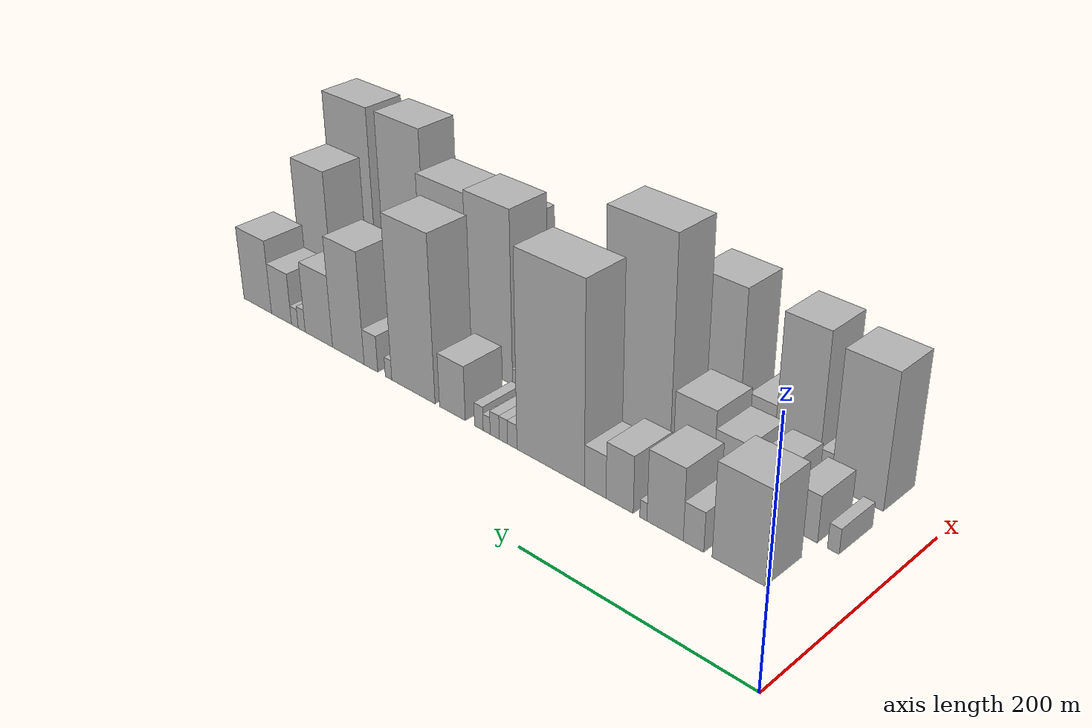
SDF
<sdf version="1.6">
 <world name="default">
  <model name="building_16">
   <static>1</static>
   <pose>100.0000 76.8772 0 0.000000 0.000000 0.000000</pose>
   <link name="link">
    <pose>0 0 39.00 0 0 0</pose>
    <collision name="collision"><geometry><box><size>40.0000 43.7319 78.0000</size></box></geometry></collision>
    <visual name="visual">
     <cast_shadows>0</cast_shadows>
     <geometry><box><size>40.0000 43.7319 78.0000</size></box></geometry>
     <material>
      <script>
       <uri>model://HANNAS_wall/materials/scripts</uri>
       <uri>model://HANNAS_wall/materials/textures</uri>
       <name>vrc/HANNAS_wall</name>
      </script>
     </material>
    </visual>
   </link>
  </model>
  <model name="building_17">
   <static>1</static>
   <pose>100.0000 114.5624 0 0.000000 0.000000 0.000000</pose>
   <link name="link">
    <pose>0 0 16.50 0 0 0</pose>
    <collision name="collision"><geometry><box><size>40.0000 17.6386 33.0000</size></box></geometry></collision>
    <visual name="visual">
     <cast_shadows>0</cast_shadows>
     <geometry><box><size>40.0000 17.6386 33.0000</size></box></geometry>
     <material>
      <script>
       <uri>model://HANNAS_wall/materials/scripts</uri>
       <uri>model://HANNAS_wall/materials/textures</uri>
       <name>vrc/HANNAS_wall</name>
      </script>
     </material>
    </visual>
   </link>
  </model>
  <model name="building_18">
   <static>1</static>
   <pose>100.0000 139.4143 0 0.000000 0.000000 0.000000</pose>
   <link name="link">
    <pose>0 0 30.00 0 0 0</pose>
    <collision name="collision"><geometry><box><size>40.0000 32.0651 60.0000</size></box></geometry></collision>
    <visual name="visual">
     <cast_shadows>0</cast_shadows>
     <geometry><box><size>40.0000 32.0651 60.0000</size></box></geometry>
     <material>
      <script>
       <uri>model://HANNAS_wall/materials/scripts</uri>
       <uri>model://HANNAS_wall/materials/textures</uri>
       <name>vrc/HANNAS_wall</name>
      </script>
     </material>
    </visual>
   </link>
  </model>
  <model name="building_19">
   <static>1</static>
   <pose>100.0000 158.6503 0 0.000000 0.000000 0.000000</pose>
   <link name="link">
    <pose>0 0 7.50 0 0 0</pose>
    <collision name="collision"><geometry><box><size>40.0000 6.4071 15.0000</size></box></geometry></collision>
    <visual name="visual">
     <cast_shadows>0</cast_shadows>
     <geometry><box><size>40.0000 6.4071 15.0000</size></box></geometry>
     <material>
      <script>
       <uri>model://HANNAS_wall/materials/scripts</uri>
       <uri>model://HANNAS_wall/materials/textures</uri>
       <name>vrc/HANNAS_wall</name>
      </script>
     </material>
    </visual>
   </link>
  </model>
  <model name="building_20">
   <static>1</static>
   <pose>100.0000 180.4715 0 0.000000 0.000000 0.000000</pose>
   <link name="link">
    <pose>0 0 24.00 0 0 0</pose>
    <collision name="collision"><geometry><box><size>40.0000 25.2353 48.0000</size></box></geometry></collision>
    <visual name="visual">
     <cast_shadows>0</cast_shadows>
     <geometry><box><size>40.0000 25.2353 48.0000</size></box></geometry>
     <material>
      <script>
       <uri>model://HANNAS_wall/materials/scripts</uri>
       <uri>model://HANNAS_wall/materials/textures</uri>
       <name>vrc/HANNAS_wall</name>
      </script>
     </material>
    </visual>
   </link>
  </model>
  <model name="building_21">
   <static>1</static>
   <pose>100.0000 203.3106 0 0.000000 0.000000 0.000000</pose>
   <link name="link">
    <pose>0 0 18.00 0 0 0</pose>
    <collision name="collision"><geometry><box><size>40.0000 20.4430 36.0000</size></box></geometry></collision>
    <visual name="visual">
     <cast_shadows>0</cast_shadows>
     <geometry><box><size>40.0000 20.4430 36.0000</size></box></geometry>
     <material>
      <script>
       <uri>model://HANNAS_wall/materials/scripts</uri>
       <uri>model://HANNAS_wall/materials/textures</uri>
       <name>vrc/HANNAS_wall</name>
      </script>
     </material>
    </visual>
   </link>
  </model>
  <model name="building_22">
   <static>1</static>
   <pose>100.0000 247.0963 0 0.000000 0.000000 0.000000</pose>
   <link name="link">
    <pose>0 0 84.00 0 0 0</pose>
    <collision name="collision"><geometry><box><size>40.0000 67.1283 168.0000</size></box></geometry></collision>
    <visual name="visual">
     <cast_shadows>0</cast_shadows>
     <geometry><box><size>40.0000 67.1283 168.0000</size></box></geometry>
     <material>
      <script>
       <uri>model://HANNAS_wall/materials/scripts</uri>
       <uri>model://HANNAS_wall/materials/textures</uri>
       <name>vrc/HANNAS_wall</name>
      </script>
     </material>
    </visual>
   </link>
  </model>
  <model name="building_23">
   <static>1</static>
   <pose>100.0000 285.5827 0 0.000000 0.000000 0.000000</pose>
   <link name="link">
    <pose>0 0 10.50 0 0 0</pose>
    <collision name="collision"><geometry><box><size>40.0000 9.8445 21.0000</size></box></geometry></collision>
    <visual name="visual">
     <cast_shadows>0</cast_shadows>
     <geometry><box><size>40.0000 9.8445 21.0000</size></box></geometry>
     <material>
      <script>
       <uri>model://HANNAS_wall/materials/scripts</uri>
       <uri>model://HANNAS_wall/materials/textures</uri>
       <name>vrc/HANNAS_wall</name>
      </script>
     </material>
    </visual>
   </link>
  </model>
  <model name="building_24">
   <static>1</static>
   <pose>100.0000 294.8007 0 0.000000 0.000000 0.000000</pose>
   <link name="link">
    <pose>0 0 10.50 0 0 0</pose>
    <collision name="collision"><geometry><box><size>40.0000 8.5914 21.0000</size></box></geometry></collision>
    <visual name="visual">
     <cast_shadows>0</cast_shadows>
     <geometry><box><size>40.0000 8.5914 21.0000</size></box></geometry>
     <material>
      <script>
       <uri>model://HANNAS_wall/materials/scripts</uri>
       <uri>model://HANNAS_wall/materials/textures</uri>
       <name>vrc/HANNAS_wall</name>
      </script>
     </material>
    </visual>
   </link>
  </model>
  <model name="building_25">
   <static>1</static>
   <pose>100.0000 303.9282 0 0.000000 0.000000 0.000000</pose>
   <link name="link">
    <pose>0 0 10.50 0 0 0</pose>
    <collision name="collision"><geometry><box><size>40.0000 9.6634 21.0000</size></box></geometry></collision>
    <visual name="visual">
     <cast_shadows>0</cast_shadows>
     <geometry><box><size>40.0000 9.6634 21.0000</size></box></geometry>
     <material>
      <script>
       <uri>model://HANNAS_wall/materials/scripts</uri>
       <uri>model://HANNAS_wall/materials/textures</uri>
       <name>vrc/HANNAS_wall</name>
      </script>
     </material>
    </visual>
   </link>
  </model>
  <model name="building_26">
   <static>1</static>
   <pose>100.0000 312.4724 0 0.000000 0.000000 0.000000</pose>
   <link name="link">
    <pose>0 0 7.50 0 0 0</pose>
    <collision name="collision"><geometry><box><size>40.0000 7.4251 15.0000</size></box></geometry></collision>
    <visual name="visual">
     <cast_shadows>0</cast_shadows>
     <geometry><box><size>40.0000 7.4251 15.0000</size></box></geometry>
     <material>
      <script>
       <uri>model://HANNAS_wall/materials/scripts</uri>
       <uri>model://HANNAS_wall/materials/textures</uri>
       <name>vrc/HANNAS_wall</name>
      </script>
     </material>
    </visual>
   </link>
  </model>
  <model name="building_27">
   <static>1</static>
   <pose>100.0000 320.8643 0 0.000000 0.000000 0.000000</pose>
   <link name="link">
    <pose>0 0 10.50 0 0 0</pose>
    <collision name="collision"><geometry><box><size>40.0000 9.3586 21.0000</size></box></geometry></collision>
    <visual name="visual">
     <cast_shadows>0</cast_shadows>
     <geometry><box><size>40.0000 9.3586 21.0000</size></box></geometry>
     <material>
      <script>
       <uri>model://HANNAS_wall/materials/scripts</uri>
       <uri>model://HANNAS_wall/materials/textures</uri>
       <name>vrc/HANNAS_wall</name>
      </script>
     </material>
    </visual>
   </link>
  </model>
  <model name="building_28">
   <static>1</static>
   <pose>100.0000 349.8783 0 0.000000 0.000000 0.000000</pose>
   <link name="link">
    <pose>0 0 24.00 0 0 0</pose>
    <collision name="collision"><geometry><box><size>40.0000 28.6696 48.0000</size></box></geometry></collision>
    <visual name="visual">
     <cast_shadows>0</cast_shadows>
     <geometry><box><size>40.0000 28.6696 48.0000</size></box></geometry>
     <material>
      <script>
       <uri>model://HANNAS_wall/materials/scripts</uri>
       <uri>model://HANNAS_wall/materials/textures</uri>
       <name>vrc/HANNAS_wall</name>
      </script>
     </material>
    </visual>
   </link>
  </model>
  <model name="building_29">
   <static>1</static>
   <pose>100.0000 394.3280 0 0.000000 0.000000 0.000000</pose>
   <link name="link">
    <pose>0 0 73.50 0 0 0</pose>
    <collision name="collision"><geometry><box><size>40.0000 50.2297 147.0000</size></box></geometry></collision>
    <visual name="visual">
     <cast_shadows>0</cast_shadows>
     <geometry><box><size>40.0000 50.2297 147.0000</size></box></geometry>
     <material>
      <script>
       <uri>model://HANNAS_wall/materials/scripts</uri>
       <uri>model://HANNAS_wall/materials/textures</uri>
       <name>vrc/HANNAS_wall</name>
      </script>
     </material>
    </visual>
   </link>
  </model>
  <model name="building_30">
   <static>1</static>
   <pose>100.0000 423.3391 0 0.000000 0.000000 0.000000</pose>
   <link name="link">
    <pose>0 0 9.00 0 0 0</pose>
    <collision name="collision"><geometry><box><size>40.0000 7.7924 18.0000</size></box></geometry></collision>
    <visual name="visual">
     <cast_shadows>0</cast_shadows>
     <geometry><box><size>40.0000 7.7924 18.0000</size></box></geometry>
     <material>
      <script>
       <uri>model://HANNAS_wall/materials/scripts</uri>
       <uri>model://HANNAS_wall/materials/textures</uri>
       <name>vrc/HANNAS_wall</name>
      </script>
     </material>
    </visual>
   </link>
  </model>
  <model name="building_31">
   <static>1</static>
   <pose>100.0000 444.5857 0 0.000000 0.000000 0.000000</pose>
   <link name="link">
    <pose>0 0 16.50 0 0 0</pose>
    <collision name="collision"><geometry><box><size>40.0000 16.7009 33.0000</size></box></geometry></collision>
    <visual name="visual">
     <cast_shadows>0</cast_shadows>
     <geometry><box><size>40.0000 16.7009 33.0000</size></box></geometry>
     <material>
      <script>
       <uri>model://HANNAS_wall/materials/scripts</uri>
       <uri>model://HANNAS_wall/materials/textures</uri>
       <name>vrc/HANNAS_wall</name>
      </script>
     </material>
    </visual>
   </link>
  </model>
  <model name="building_32">
   <static>1</static>
   <pose>100.0000 472.7256 0 0.000000 0.000000 0.000000</pose>
   <link name="link">
    <pose>0 0 51.00 0 0 0</pose>
    <collision name="collision"><geometry><box><size>40.0000 39.5789 102.0000</size></box></geometry></collision>
    <visual name="visual">
     <cast_shadows>0</cast_shadows>
     <geometry><box><size>40.0000 39.5789 102.0000</size></box></geometry>
     <material>
      <script>
       <uri>model://HANNAS_wall/materials/scripts</uri>
       <uri>model://HANNAS_wall/materials/textures</uri>
       <name>vrc/HANNAS_wall</name>
      </script>
     </material>
    </visual>
   </link>
  </model>
  <model name="building_33">
   <static>1</static>
   <pose>100.0000 510.2920 0 0.000000 0.000000 0.000000</pose>
   <link name="link">
    <pose>0 0 33.00 0 0 0</pose>
    <collision name="collision"><geometry><box><size>40.0000 35.5539 66.0000</size></box></geometry></collision>
    <visual name="visual">
     <cast_shadows>0</cast_shadows>
     <geometry><box><size>40.0000 35.5539 66.0000</size></box></geometry>
     <material>
      <script>
       <uri>model://HANNAS_wall/materials/scripts</uri>
       <uri>model://HANNAS_wall/materials/textures</uri>
       <name>vrc/HANNAS_wall</name>
      </script>
     </material>
    </visual>
   </link>
  </model>
  <model name="building_34">
   <static>1</static>
   <pose>100.0000 532.7172 0 0.000000 0.000000 0.000000</pose>
   <link name="link">
    <pose>0 0 10.50 0 0 0</pose>
    <collision name="collision"><geometry><box><size>40.0000 9.2965 21.0000</size></box></geometry></collision>
    <visual name="visual">
     <cast_shadows>0</cast_shadows>
     <geometry><box><size>40.0000 9.2965 21.0000</size></box></geometry>
     <material>
      <script>
       <uri>model://HANNAS_wall/materials/scripts</uri>
       <uri>model://HANNAS_wall/materials/textures</uri>
       <name>vrc/HANNAS_wall</name>
      </script>
     </material>
    </visual>
   </link>
  </model>
  <model name="building_35">
   <static>1</static>
   <pose>100.0000 541.8616 0 0.000000 0.000000 0.000000</pose>
   <link name="link">
    <pose>0 0 9.00 0 0 0</pose>
    <collision name="collision"><geometry><box><size>40.0000 8.9924 18.0000</size></box></geometry></collision>
    <visual name="visual">
     <cast_shadows>0</cast_shadows>
     <geometry><box><size>40.0000 8.9924 18.0000</size></box></geometry>
     <material>
      <script>
       <uri>model://HANNAS_wall/materials/scripts</uri>
       <uri>model://HANNAS_wall/materials/textures</uri>
       <name>vrc/HANNAS_wall</name>
      </script>
     </material>
    </visual>
   </link>
  </model>
  <model name="building_36">
   <static>1</static>
   <pose>100.0000 559.9342 0 0.000000 0.000000 0.000000</pose>
   <link name="link">
    <pose>0 0 24.00 0 0 0</pose>
    <collision name="collision"><geometry><box><size>40.0000 27.1529 48.0000</size></box></geometry></collision>
    <visual name="visual">
     <cast_shadows>0</cast_shadows>
     <geometry><box><size>40.0000 27.1529 48.0000</size></box></geometry>
     <material>
      <script>
       <uri>model://HANNAS_wall/materials/scripts</uri>
       <uri>model://HANNAS_wall/materials/textures</uri>
       <name>vrc/HANNAS_wall</name>
      </script>
     </material>
    </visual>
   </link>
  </model>
  <model name="building_37">
   <static>1</static>
   <pose>100.0000 592.8155 0 0.000000 0.000000 0.000000</pose>
   <link name="link">
    <pose>0 0 34.50 0 0 0</pose>
    <collision name="collision"><geometry><box><size>40.0000 38.6096 69.0000</size></box></geometry></collision>
    <visual name="visual">
     <cast_shadows>0</cast_shadows>
     <geometry><box><size>40.0000 38.6096 69.0000</size></box></geometry>
     <material>
      <script>
       <uri>model://HANNAS_wall/materials/scripts</uri>
       <uri>model://HANNAS_wall/materials/textures</uri>
       <name>vrc/HANNAS_wall</name>
      </script>
     </material>
    </visual>
   </link>
  </model>
  <model name="building_58">
   <static>1</static>
   <pose>160.0000 43.2973 0 0.000000 0.000000 0.000000</pose>
   <link name="link">
    <pose>0 0 10.50 0 0 0</pose>
    <collision name="collision"><geometry><box><size>40.0000 9.4666 21.0000</size></box></geometry></collision>
    <visual name="visual">
     <cast_shadows>0</cast_shadows>
     <geometry><box><size>40.0000 9.4666 21.0000</size></box></geometry>
     <material>
      <script>
       <uri>model://HANNAS_wall/materials/scripts</uri>
       <uri>model://HANNAS_wall/materials/textures</uri>
       <name>vrc/HANNAS_wall</name>
      </script>
     </material>
    </visual>
   </link>
  </model>
  <model name="building_59">
   <static>1</static>
   <pose>160.0000 67.4044 0 0.000000 0.000000 0.000000</pose>
   <link name="link">
    <pose>0 0 19.50 0 0 0</pose>
    <collision name="collision"><geometry><box><size>40.0000 22.7476 39.0000</size></box></geometry></collision>
    <visual name="visual">
     <cast_shadows>0</cast_shadows>
     <geometry><box><size>40.0000 22.7476 39.0000</size></box></geometry>
     <material>
      <script>
       <uri>model://HANNAS_wall/materials/scripts</uri>
       <uri>model://HANNAS_wall/materials/textures</uri>
       <name>vrc/HANNAS_wall</name>
      </script>
     </material>
    </visual>
   </link>
  </model>
  <model name="building_60">
   <static>1</static>
   <pose>160.0000 96.5250 0 0.000000 0.000000 0.000000</pose>
   <link name="link">
    <pose>0 0 24.00 0 0 0</pose>
    <collision name="collision"><geometry><box><size>40.0000 25.4935 48.0000</size></box></geometry></collision>
    <visual name="visual">
     <cast_shadows>0</cast_shadows>
     <geometry><box><size>40.0000 25.4935 48.0000</size></box></geometry>
     <material>
      <script>
       <uri>model://HANNAS_wall/materials/scripts</uri>
       <uri>model://HANNAS_wall/materials/textures</uri>
       <name>vrc/HANNAS_wall</name>
      </script>
     </material>
    </visual>
   </link>
  </model>
  <model name="building_61">
   <static>1</static>
   <pose>160.0000 130.7838 0 0.000000 0.000000 0.000000</pose>
   <link name="link">
    <pose>0 0 25.50 0 0 0</pose>
    <collision name="collision"><geometry><box><size>40.0000 29.0240 51.0000</size></box></geometry></collision>
    <visual name="visual">
     <cast_shadows>0</cast_shadows>
     <geometry><box><size>40.0000 29.0240 51.0000</size></box></geometry>
     <material>
      <script>
       <uri>model://HANNAS_wall/materials/scripts</uri>
       <uri>model://HANNAS_wall/materials/textures</uri>
       <name>vrc/HANNAS_wall</name>
      </script>
     </material>
    </visual>
   </link>
  </model>
  <model name="building_62">
   <static>1</static>
   <pose>160.0000 163.6645 0 0.000000 0.000000 0.000000</pose>
   <link name="link">
    <pose>0 0 33.00 0 0 0</pose>
    <collision name="collision"><geometry><box><size>40.0000 36.7376 66.0000</size></box></geometry></collision>
    <visual name="visual">
     <cast_shadows>0</cast_shadows>
     <geometry><box><size>40.0000 36.7376 66.0000</size></box></geometry>
     <material>
      <script>
       <uri>model://HANNAS_wall/materials/scripts</uri>
       <uri>model://HANNAS_wall/materials/textures</uri>
       <name>vrc/HANNAS_wall</name>
      </script>
     </material>
    </visual>
   </link>
  </model>
  <model name="building_63">
   <static>1</static>
   <pose>160.0000 216.8619 0 0.000000 0.000000 0.000000</pose>
   <link name="link">
    <pose>0 0 94.50 0 0 0</pose>
    <collision name="collision"><geometry><box><size>40.0000 63.6572 189.0000</size></box></geometry></collision>
    <visual name="visual">
     <cast_shadows>0</cast_shadows>
     <geometry><box><size>40.0000 63.6572 189.0000</size></box></geometry>
     <material>
      <script>
       <uri>model://HANNAS_wall/materials/scripts</uri>
       <uri>model://HANNAS_wall/materials/textures</uri>
       <name>vrc/HANNAS_wall</name>
      </script>
     </material>
    </visual>
   </link>
  </model>
  <model name="building_64">
   <static>1</static>
   <pose>160.0000 267.8560 0 0.000000 0.000000 0.000000</pose>
   <link name="link">
    <pose>0 0 37.50 0 0 0</pose>
    <collision name="collision"><geometry><box><size>40.0000 38.3310 75.0000</size></box></geometry></collision>
    <visual name="visual">
     <cast_shadows>0</cast_shadows>
     <geometry><box><size>40.0000 38.3310 75.0000</size></box></geometry>
     <material>
      <script>
       <uri>model://HANNAS_wall/materials/scripts</uri>
       <uri>model://HANNAS_wall/materials/textures</uri>
       <name>vrc/HANNAS_wall</name>
      </script>
     </material>
    </visual>
   </link>
  </model>
  <model name="building_65">
   <static>1</static>
   <pose>160.0000 305.3579 0 0.000000 0.000000 0.000000</pose>
   <link name="link">
    <pose>0 0 27.00 0 0 0</pose>
    <collision name="collision"><geometry><box><size>40.0000 28.6729 54.0000</size></box></geometry></collision>
    <visual name="visual">
     <cast_shadows>0</cast_shadows>
     <geometry><box><size>40.0000 28.6729 54.0000</size></box></geometry>
     <material>
      <script>
       <uri>model://HANNAS_wall/materials/scripts</uri>
       <uri>model://HANNAS_wall/materials/textures</uri>
       <name>vrc/HANNAS_wall</name>
      </script>
     </material>
    </visual>
   </link>
  </model>
  <model name="building_66">
   <static>1</static>
   <pose>160.0000 328.5517 0 0.000000 0.000000 0.000000</pose>
   <link name="link">
    <pose>0 0 16.50 0 0 0</pose>
    <collision name="collision"><geometry><box><size>40.0000 17.7148 33.0000</size></box></geometry></collision>
    <visual name="visual">
     <cast_shadows>0</cast_shadows>
     <geometry><box><size>40.0000 17.7148 33.0000</size></box></geometry>
     <material>
      <script>
       <uri>model://HANNAS_wall/materials/scripts</uri>
       <uri>model://HANNAS_wall/materials/textures</uri>
       <name>vrc/HANNAS_wall</name>
      </script>
     </material>
    </visual>
   </link>
  </model>
  <model name="building_67">
   <static>1</static>
   <pose>160.0000 341.0375 0 0.000000 0.000000 0.000000</pose>
   <link name="link">
    <pose>0 0 7.50 0 0 0</pose>
    <collision name="collision"><geometry><box><size>40.0000 7.2568 15.0000</size></box></geometry></collision>
    <visual name="visual">
     <cast_shadows>0</cast_shadows>
     <geometry><box><size>40.0000 7.2568 15.0000</size></box></geometry>
     <material>
      <script>
       <uri>model://HANNAS_wall/materials/scripts</uri>
       <uri>model://HANNAS_wall/materials/textures</uri>
       <name>vrc/HANNAS_wall</name>
      </script>
     </material>
    </visual>
   </link>
  </model>
  <model name="building_68">
   <static>1</static>
   <pose>160.0000 369.2973 0 0.000000 0.000000 0.000000</pose>
   <link name="link">
    <pose>0 0 76.50 0 0 0</pose>
    <collision name="collision"><geometry><box><size>40.0000 49.2628 153.0000</size></box></geometry></collision>
    <visual name="visual">
     <cast_shadows>0</cast_shadows>
     <geometry><box><size>40.0000 49.2628 153.0000</size></box></geometry>
     <material>
      <script>
       <uri>model://HANNAS_wall/materials/scripts</uri>
       <uri>model://HANNAS_wall/materials/textures</uri>
       <name>vrc/HANNAS_wall</name>
      </script>
     </material>
    </visual>
   </link>
  </model>
  <model name="building_69">
   <static>1</static>
   <pose>160.0000 420.6296 0 0.000000 0.000000 0.000000</pose>
   <link name="link">
    <pose>0 0 75.00 0 0 0</pose>
    <collision name="collision"><geometry><box><size>40.0000 53.4019 150.0000</size></box></geometry></collision>
    <visual name="visual">
     <cast_shadows>0</cast_shadows>
     <geometry><box><size>40.0000 53.4019 150.0000</size></box></geometry>
     <material>
      <script>
       <uri>model://HANNAS_wall/materials/scripts</uri>
       <uri>model://HANNAS_wall/materials/textures</uri>
       <name>vrc/HANNAS_wall</name>
      </script>
     </material>
    </visual>
   </link>
  </model>
  <model name="building_70">
   <static>1</static>
   <pose>160.0000 466.6849 0 0.000000 0.000000 0.000000</pose>
   <link name="link">
    <pose>0 0 34.50 0 0 0</pose>
    <collision name="collision"><geometry><box><size>40.0000 38.7087 69.0000</size></box></geometry></collision>
    <visual name="visual">
     <cast_shadows>0</cast_shadows>
     <geometry><box><size>40.0000 38.7087 69.0000</size></box></geometry>
     <material>
      <script>
       <uri>model://HANNAS_wall/materials/scripts</uri>
       <uri>model://HANNAS_wall/materials/textures</uri>
       <name>vrc/HANNAS_wall</name>
      </script>
     </material>
    </visual>
   </link>
  </model>
  <model name="building_71">
   <static>1</static>
   <pose>160.0000 491.1471 0 0.000000 0.000000 0.000000</pose>
   <link name="link">
    <pose>0 0 10.50 0 0 0</pose>
    <collision name="collision"><geometry><box><size>40.0000 10.2156 21.0000</size></box></geometry></collision>
    <visual name="visual">
     <cast_shadows>0</cast_shadows>
     <geometry><box><size>40.0000 10.2156 21.0000</size></box></geometry>
     <material>
      <script>
       <uri>model://HANNAS_wall/materials/scripts</uri>
       <uri>model://HANNAS_wall/materials/textures</uri>
       <name>vrc/HANNAS_wall</name>
      </script>
     </material>
    </visual>
   </link>
  </model>
  <model name="building_72">
   <static>1</static>
   <pose>160.0000 521.3156 0 0.000000 0.000000 0.000000</pose>
   <link name="link">
    <pose>0 0 25.50 0 0 0</pose>
    <collision name="collision"><geometry><box><size>40.0000 30.1216 51.0000</size></box></geometry></collision>
    <visual name="visual">
     <cast_shadows>0</cast_shadows>
     <geometry><box><size>40.0000 30.1216 51.0000</size></box></geometry>
     <material>
      <script>
       <uri>model://HANNAS_wall/materials/scripts</uri>
       <uri>model://HANNAS_wall/materials/textures</uri>
       <name>vrc/HANNAS_wall</name>
      </script>
     </material>
    </visual>
   </link>
  </model>
  <model name="building_73">
   <static>1</static>
   <pose>160.0000 547.3851 0 0.000000 0.000000 0.000000</pose>
   <link name="link">
    <pose>0 0 21.00 0 0 0</pose>
    <collision name="collision"><geometry><box><size>40.0000 22.0174 42.0000</size></box></geometry></collision>
    <visual name="visual">
     <cast_shadows>0</cast_shadows>
     <geometry><box><size>40.0000 22.0174 42.0000</size></box></geometry>
     <material>
      <script>
       <uri>model://HANNAS_wall/materials/scripts</uri>
       <uri>model://HANNAS_wall/materials/textures</uri>
       <name>vrc/HANNAS_wall</name>
      </script>
     </material>
    </visual>
   </link>
  </model>
  <model name="building_74">
   <static>1</static>
   <pose>160.0000 586.9768 0 0.000000 0.000000 0.000000</pose>
   <link name="link">
    <pose>0 0 57.00 0 0 0</pose>
    <collision name="collision"><geometry><box><size>40.0000 43.1661 114.0000</size></box></geometry></collision>
    <visual name="visual">
     <cast_shadows>0</cast_shadows>
     <geometry><box><size>40.0000 43.1661 114.0000</size></box></geometry>
     <material>
      <script>
       <uri>model://HANNAS_wall/materials/scripts</uri>
       <uri>model://HANNAS_wall/materials/textures</uri>
       <name>vrc/HANNAS_wall</name>
      </script>
     </material>
    </visual>
   </link>
  </model>
  <model name="building_96">
   <static>1</static>
   <pose>220.0000 64.4502 0 0.000000 0.000000 0.000000</pose>
   <link name="link">
    <pose>0 0 57.00 0 0 0</pose>
    <collision name="collision"><geometry><box><size>40.0000 43.6519 114.0000</size></box></geometry></collision>
    <visual name="visual">
     <cast_shadows>0</cast_shadows>
     <geometry><box><size>40.0000 43.6519 114.0000</size></box></geometry>
     <material>
      <script>
       <uri>model://HANNAS_wall/materials/scripts</uri>
       <uri>model://HANNAS_wall/materials/textures</uri>
       <name>vrc/HANNAS_wall</name>
      </script>
     </material>
    </visual>
   </link>
  </model>
  <model name="building_97">
   <static>1</static>
   <pose>220.0000 91.8050 0 0.000000 0.000000 0.000000</pose>
   <link name="link">
    <pose>0 0 13.50 0 0 0</pose>
    <collision name="collision"><geometry><box><size>40.0000 11.0579 27.0000</size></box></geometry></collision>
    <visual name="visual">
     <cast_shadows>0</cast_shadows>
     <geometry><box><size>40.0000 11.0579 27.0000</size></box></geometry>
     <material>
      <script>
       <uri>model://HANNAS_wall/materials/scripts</uri>
       <uri>model://HANNAS_wall/materials/textures</uri>
       <name>vrc/HANNAS_wall</name>
      </script>
     </material>
    </visual>
   </link>
  </model>
  <model name="building_98">
   <static>1</static>
   <pose>220.0000 117.0110 0 0.000000 0.000000 0.000000</pose>
   <link name="link">
    <pose>0 0 61.50 0 0 0</pose>
    <collision name="collision"><geometry><box><size>40.0000 39.3540 123.0000</size></box></geometry></collision>
    <visual name="visual">
     <cast_shadows>0</cast_shadows>
     <geometry><box><size>40.0000 39.3540 123.0000</size></box></geometry>
     <material>
      <script>
       <uri>model://HANNAS_wall/materials/scripts</uri>
       <uri>model://HANNAS_wall/materials/textures</uri>
       <name>vrc/HANNAS_wall</name>
      </script>
     </material>
    </visual>
   </link>
  </model>
  <model name="building_99">
   <static>1</static>
   <pose>220.0000 149.0572 0 0.000000 0.000000 0.000000</pose>
   <link name="link">
    <pose>0 0 22.50 0 0 0</pose>
    <collision name="collision"><geometry><box><size>40.0000 24.7383 45.0000</size></box></geometry></collision>
    <visual name="visual">
     <cast_shadows>0</cast_shadows>
     <geometry><box><size>40.0000 24.7383 45.0000</size></box></geometry>
     <material>
      <script>
       <uri>model://HANNAS_wall/materials/scripts</uri>
       <uri>model://HANNAS_wall/materials/textures</uri>
       <name>vrc/HANNAS_wall</name>
      </script>
     </material>
    </visual>
   </link>
  </model>
  <model name="building_100">
   <static>1</static>
   <pose>220.0000 191.3042 0 0.000000 0.000000 0.000000</pose>
   <link name="link">
    <pose>0 0 64.50 0 0 0</pose>
    <collision name="collision"><geometry><box><size>40.0000 45.7557 129.0000</size></box></geometry></collision>
    <visual name="visual">
     <cast_shadows>0</cast_shadows>
     <geometry><box><size>40.0000 45.7557 129.0000</size></box></geometry>
     <material>
      <script>
       <uri>model://HANNAS_wall/materials/scripts</uri>
       <uri>model://HANNAS_wall/materials/textures</uri>
       <name>vrc/HANNAS_wall</name>
      </script>
     </material>
    </visual>
   </link>
  </model>
  <model name="building_101">
   <static>1</static>
   <pose>220.0000 237.3984 0 0.000000 0.000000 0.000000</pose>
   <link name="link">
    <pose>0 0 46.50 0 0 0</pose>
    <collision name="collision"><geometry><box><size>40.0000 34.4327 93.0000</size></box></geometry></collision>
    <visual name="visual">
     <cast_shadows>0</cast_shadows>
     <geometry><box><size>40.0000 34.4327 93.0000</size></box></geometry>
     <material>
      <script>
       <uri>model://HANNAS_wall/materials/scripts</uri>
       <uri>model://HANNAS_wall/materials/textures</uri>
       <name>vrc/HANNAS_wall</name>
      </script>
     </material>
    </visual>
   </link>
  </model>
  <model name="building_102">
   <static>1</static>
   <pose>220.0000 259.6882 0 0.000000 0.000000 0.000000</pose>
   <link name="link">
    <pose>0 0 10.50 0 0 0</pose>
    <collision name="collision"><geometry><box><size>40.0000 10.1469 21.0000</size></box></geometry></collision>
    <visual name="visual">
     <cast_shadows>0</cast_shadows>
     <geometry><box><size>40.0000 10.1469 21.0000</size></box></geometry>
     <material>
      <script>
       <uri>model://HANNAS_wall/materials/scripts</uri>
       <uri>model://HANNAS_wall/materials/textures</uri>
       <name>vrc/HANNAS_wall</name>
      </script>
     </material>
    </visual>
   </link>
  </model>
  <model name="building_103">
   <static>1</static>
   <pose>220.0000 284.0600 0 0.000000 0.000000 0.000000</pose>
   <link name="link">
    <pose>0 0 28.50 0 0 0</pose>
    <collision name="collision"><geometry><box><size>40.0000 28.5968 57.0000</size></box></geometry></collision>
    <visual name="visual">
     <cast_shadows>0</cast_shadows>
     <geometry><box><size>40.0000 28.5968 57.0000</size></box></geometry>
     <material>
      <script>
       <uri>model://HANNAS_wall/materials/scripts</uri>
       <uri>model://HANNAS_wall/materials/textures</uri>
       <name>vrc/HANNAS_wall</name>
      </script>
     </material>
    </visual>
   </link>
  </model>
  <model name="building_104">
   <static>1</static>
   <pose>220.0000 311.5458 0 0.000000 0.000000 0.000000</pose>
   <link name="link">
    <pose>0 0 22.50 0 0 0</pose>
    <collision name="collision"><geometry><box><size>40.0000 26.3746 45.0000</size></box></geometry></collision>
    <visual name="visual">
     <cast_shadows>0</cast_shadows>
     <geometry><box><size>40.0000 26.3746 45.0000</size></box></geometry>
     <material>
      <script>
       <uri>model://HANNAS_wall/materials/scripts</uri>
       <uri>model://HANNAS_wall/materials/textures</uri>
       <name>vrc/HANNAS_wall</name>
      </script>
     </material>
    </visual>
   </link>
  </model>
  <model name="building_105">
   <static>1</static>
   <pose>220.0000 333.1644 0 0.000000 0.000000 0.000000</pose>
   <link name="link">
    <pose>0 0 7.50 0 0 0</pose>
    <collision name="collision"><geometry><box><size>40.0000 6.8626 15.0000</size></box></geometry></collision>
    <visual name="visual">
     <cast_shadows>0</cast_shadows>
     <geometry><box><size>40.0000 6.8626 15.0000</size></box></geometry>
     <material>
      <script>
       <uri>model://HANNAS_wall/materials/scripts</uri>
       <uri>model://HANNAS_wall/materials/textures</uri>
       <name>vrc/HANNAS_wall</name>
      </script>
     </material>
    </visual>
   </link>
  </model>
  <model name="building_106">
   <static>1</static>
   <pose>220.0000 344.8995 0 0.000000 0.000000 0.000000</pose>
   <link name="link">
    <pose>0 0 7.50 0 0 0</pose>
    <collision name="collision"><geometry><box><size>40.0000 6.6076 15.0000</size></box></geometry></collision>
    <visual name="visual">
     <cast_shadows>0</cast_shadows>
     <geometry><box><size>40.0000 6.6076 15.0000</size></box></geometry>
     <material>
      <script>
       <uri>model://HANNAS_wall/materials/scripts</uri>
       <uri>model://HANNAS_wall/materials/textures</uri>
       <name>vrc/HANNAS_wall</name>
      </script>
     </material>
    </visual>
   </link>
  </model>
  <model name="building_107">
   <static>1</static>
   <pose>220.0000 370.8034 0 0.000000 0.000000 0.000000</pose>
   <link name="link">
    <pose>0 0 42.00 0 0 0</pose>
    <collision name="collision"><geometry><box><size>40.0000 45.2002 84.0000</size></box></geometry></collision>
    <visual name="visual">
     <cast_shadows>0</cast_shadows>
     <geometry><box><size>40.0000 45.2002 84.0000</size></box></geometry>
     <material>
      <script>
       <uri>model://HANNAS_wall/materials/scripts</uri>
       <uri>model://HANNAS_wall/materials/textures</uri>
       <name>vrc/HANNAS_wall</name>
      </script>
     </material>
    </visual>
   </link>
  </model>
  <model name="building_108">
   <static>1</static>
   <pose>220.0000 410.4986 0 0.000000 0.000000 0.000000</pose>
   <link name="link">
    <pose>0 0 52.50 0 0 0</pose>
    <collision name="collision"><geometry><box><size>40.0000 34.1901 105.0000</size></box></geometry></collision>
    <visual name="visual">
     <cast_shadows>0</cast_shadows>
     <geometry><box><size>40.0000 34.1901 105.0000</size></box></geometry>
     <material>
      <script>
       <uri>model://HANNAS_wall/materials/scripts</uri>
       <uri>model://HANNAS_wall/materials/textures</uri>
       <name>vrc/HANNAS_wall</name>
      </script>
     </material>
    </visual>
   </link>
  </model>
  <model name="building_109">
   <static>1</static>
   <pose>220.0000 451.1055 0 0.000000 0.000000 0.000000</pose>
   <link name="link">
    <pose>0 0 54.00 0 0 0</pose>
    <collision name="collision"><geometry><box><size>40.0000 41.0237 108.0000</size></box></geometry></collision>
    <visual name="visual">
     <cast_shadows>0</cast_shadows>
     <geometry><box><size>40.0000 41.0237 108.0000</size></box></geometry>
     <material>
      <script>
       <uri>model://HANNAS_wall/materials/scripts</uri>
       <uri>model://HANNAS_wall/materials/textures</uri>
       <name>vrc/HANNAS_wall</name>
      </script>
     </material>
    </visual>
   </link>
  </model>
  <model name="building_110">
   <static>1</static>
   <pose>220.0000 491.0304 0 0.000000 0.000000 0.000000</pose>
   <link name="link">
    <pose>0 0 30.00 0 0 0</pose>
    <collision name="collision"><geometry><box><size>40.0000 30.8260 60.0000</size></box></geometry></collision>
    <visual name="visual">
     <cast_shadows>0</cast_shadows>
     <geometry><box><size>40.0000 30.8260 60.0000</size></box></geometry>
     <material>
      <script>
       <uri>model://HANNAS_wall/materials/scripts</uri>
       <uri>model://HANNAS_wall/materials/textures</uri>
       <name>vrc/HANNAS_wall</name>
      </script>
     </material>
    </visual>
   </link>
  </model>
  <model name="building_111">
   <static>1</static>
   <pose>220.0000 538.2725 0 0.000000 0.000000 0.000000</pose>
   <link name="link">
    <pose>0 0 75.00 0 0 0</pose>
    <collision name="collision"><geometry><box><size>40.0000 55.6583 150.0000</size></box></geometry></collision>
    <visual name="visual">
     <cast_shadows>0</cast_shadows>
     <geometry><box><size>40.0000 55.6583 150.0000</size></box></geometry>
     <material>
      <script>
       <uri>model://HANNAS_wall/materials/scripts</uri>
       <uri>model://HANNAS_wall/materials/textures</uri>
       <name>vrc/HANNAS_wall</name>
      </script>
     </material>
    </visual>
   </link>
  </model>
  <model name="building_112">
   <static>1</static>
   <pose>220.0000 571.6431 0 0.000000 0.000000 0.000000</pose>
   <link name="link">
    <pose>0 0 12.00 0 0 0</pose>
    <collision name="collision"><geometry><box><size>40.0000 11.0829 24.0000</size></box></geometry></collision>
    <visual name="visual">
     <cast_shadows>0</cast_shadows>
     <geometry><box><size>40.0000 11.0829 24.0000</size></box></geometry>
     <material>
      <script>
       <uri>model://HANNAS_wall/materials/scripts</uri>
       <uri>model://HANNAS_wall/materials/textures</uri>
       <name>vrc/HANNAS_wall</name>
      </script>
     </material>
    </visual>
   </link>
  </model>
  <model name="building_113">
   <static>1</static>
   <pose>220.0000 606.3320 0 0.000000 0.000000 0.000000</pose>
   <link name="link">
    <pose>0 0 75.00 0 0 0</pose>
    <collision name="collision"><geometry><box><size>40.0000 58.2949 150.0000</size></box></geometry></collision>
    <visual name="visual">
     <cast_shadows>0</cast_shadows>
     <geometry><box><size>40.0000 58.2949 150.0000</size></box></geometry>
     <material>
      <script>
       <uri>model://HANNAS_wall/materials/scripts</uri>
       <uri>model://HANNAS_wall/materials/textures</uri>
       <name>vrc/HANNAS_wall</name>
      </script>
     </material>
    </visual>
   </link>
  </model>
 </world>
</sdf>
